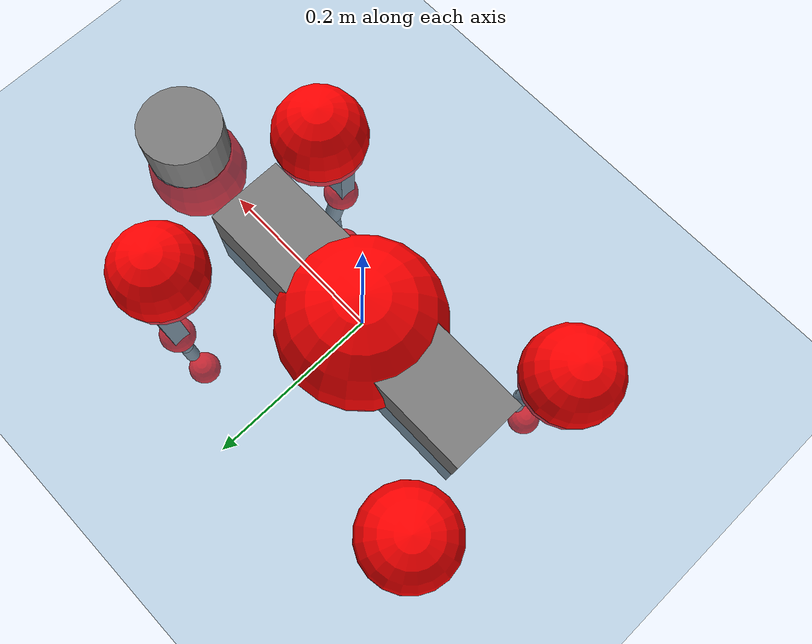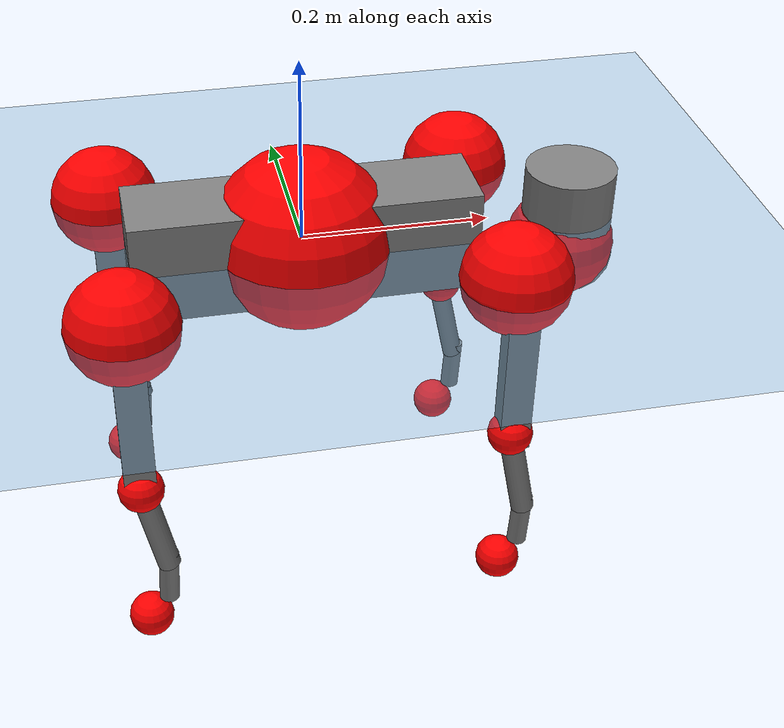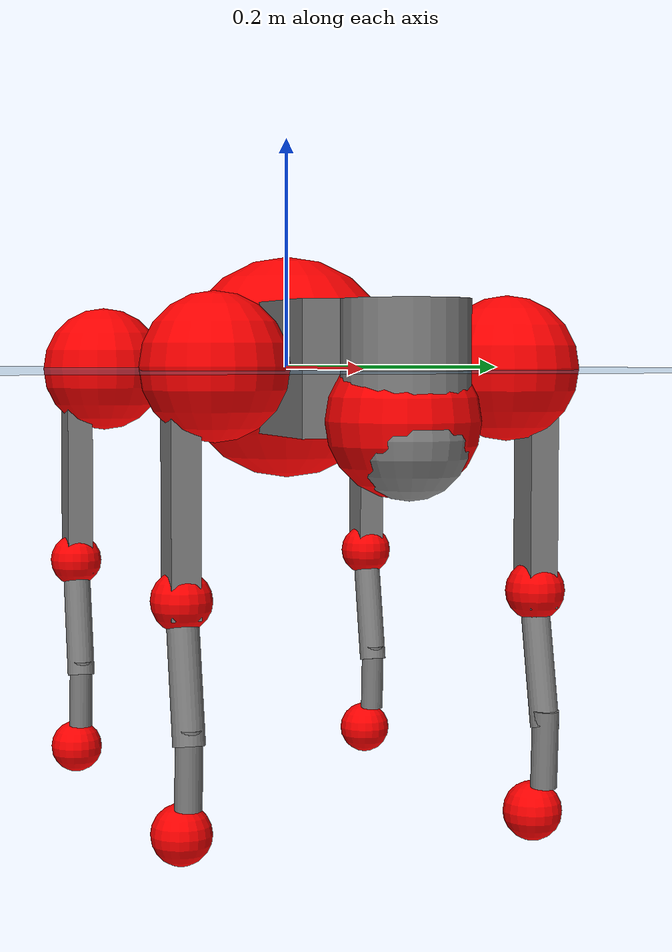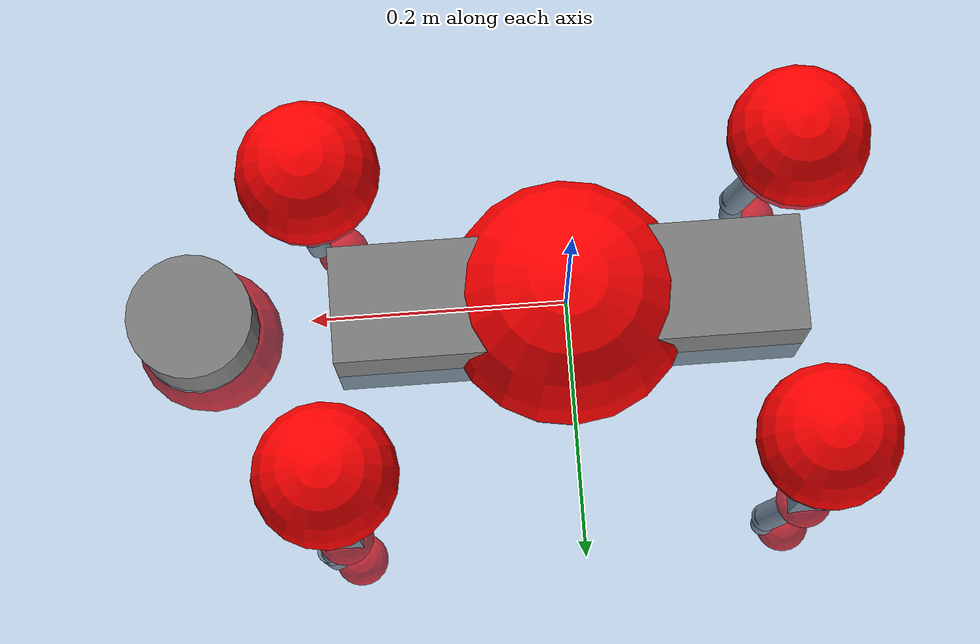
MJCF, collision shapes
<mujoco model="go2">
  <compiler angle="radian" assetdir="assets" balanceinertia="true" inertiafromgeom="false"/>

  <option timestep="0.005" density="1.2" viscosity="2e-05"/>

  <size nkey="1"/>

  <visual>
    <quality shadowsize="8192"/>
    <map shadowclip="0.5"/>
  </visual>

  <default>
    <default class="/">
      <geom contype="0" conaffinity="0" group="1" solref="-1000 -80"/>
      <site size="0.01 0.005 0.005" group="5"/>
      <general forcelimited="true" biastype="affine" gainprm="20" biasprm="0 -20 -0.5"/>
      <default class="go2">
        <joint armature="0.01" damping="0.01" frictionloss="0.2"/>
        <geom condim="1" margin="0.001"/>
        <default class="visual">
          <geom type="mesh" group="2"/>
        </default>
        <default class="collision">
          <geom group="3"/>
          <default class="foot">
            <geom size="0.022 0 0" condim="6" priority="1" friction="0.8 0.02 0.01" solimp="0.015 1 0.022"/>
          </default>
        </default>
        <default class="reward_collision_sphere">
          <geom group="5" rgba="1 0 0 1"/>
        </default>
      </default>
    </default>
  </default>

  <asset>
    <texture type="skybox" colorspace="auto" name="//unnamed_texture_0" builtin="gradient" rgb1="0.95 0.95 0.95" rgb2="0.95 0.95 0.95" width="100" height="600"/>
    <texture type="2d" colorspace="auto" name="texplane" builtin="checker" rgb1="0.345 0.575 0.748" rgb2="0.345 0.575 0.748" markrgb="1 1 1" width="512" height="512"/>
    <material name="MatPlane" class="/" texture="texplane" texuniform="true" texrepeat="2 2" specular="0.9"/>
    <material name="metal" class="/" rgba="0.9 0.95 0.95 1"/>
    <material name="black" class="/" rgba="0 0 0 1"/>
    <material name="white" class="/"/>
    <material name="gray" class="/" rgba="0.671705 0.692426 0.77427 1"/>
    <mesh name="base_0" class="/" file="base_0.obj"/>
    <mesh name="base_1" class="/" file="base_1.obj"/>
    <mesh name="base_2" class="/" file="base_2.obj"/>
    <mesh name="base_3" class="/" file="base_3.obj"/>
    <mesh name="base_4" class="/" file="base_4.obj"/>
    <mesh name="hip_0" class="/" file="hip_0.obj"/>
    <mesh name="hip_1" class="/" file="hip_1.obj"/>
    <mesh name="thigh_0" class="/" file="thigh_0.obj"/>
    <mesh name="thigh_1" class="/" file="thigh_1.obj"/>
    <mesh name="thigh_mirror_0" class="/" file="thigh_mirror_0.obj"/>
    <mesh name="thigh_mirror_1" class="/" file="thigh_mirror_1.obj"/>
    <mesh name="calf_0" class="/" file="calf_0.obj"/>
    <mesh name="calf_1" class="/" file="calf_1.obj"/>
    <mesh name="calf_mirror_0" class="/" file="calf_mirror_0.obj"/>
    <mesh name="calf_mirror_1" class="/" file="calf_mirror_1.obj"/>
    <mesh name="foot" class="/" file="foot.obj"/>
  </asset>

  <worldbody>
    <geom name="floor" class="/" size="100 100 0.125" type="plane" group="0" material="MatPlane"/>
    <light name="toplight_shadow" class="/" pos="0 0 5" dir="0.0990148 0.0990148 -0.990148" type="directional" ambient="0.04 0.04 0.04" diffuse="0.55 0.55 0.55" specular="0.12 0.12 0.12"/>
    <light name="toplight_fill" class="/" pos="0 0 5" dir="0.0990148 0.0990148 -0.990148" type="directional" castshadow="false" ambient="0.04 0.04 0.04" diffuse="0.3 0.3 0.3" specular="0.08 0.08 0.08"/>
    <body name="trunk" childclass="go2" pos="-0.000174241 0.000877669 -2.9414e-05" quat="1 -1.31496e-05 -0.00025242 -0.000207777">
      <inertial pos="0.0207677 0.000189853 -0.00480996" quat="-0.000881784 0.713508 -0.00187568 0.700644" mass="6.25593" diaginertia="0.114612 0.115818 0.0106263"/>
      <joint name="//unnamed_joint_0" type="free" armature="0" damping="0" frictionloss="0"/>
      <geom name="//unnamed_geom_1" class="visual" material="black" mesh="base_0"/>
      <geom name="//unnamed_geom_2" class="visual" material="black" mesh="base_1"/>
      <geom name="//unnamed_geom_3" class="visual" material="black" mesh="base_2"/>
      <geom name="//unnamed_geom_4" class="visual" material="white" mesh="base_3"/>
      <geom name="//unnamed_geom_5" class="visual" material="gray" mesh="base_4"/>
      <geom name="trunk_1" class="collision" size="0.181733 0.0451674 0.0550705" type="box"/>
      <geom name="trunk_2" class="collision" size="0.0483074 0.0434767" pos="0.28943 0 0.00847701" type="cylinder"/>
      <geom name="trunk_3" class="collision" size="0.045409" pos="0.297555 0 -0.050862"/>
      <geom name="//unnamed_geom_9" class="reward_collision_sphere" size="0.0966148"/>
      <geom name="//unnamed_geom_10" class="reward_collision_sphere" size="0.0579689" pos="0.284353 0 -0.0381465"/>
      <site name="imu" pos="-0.0251668 0.000841624 0.0334926" size="0.00966148"/>
      <camera name="track" pos="0 -2.0704 0" quat="0.707107 0.707107 0 0" mode="trackcom"/>
      <camera name="ego_camera" pos="0.31685 0 0.0381465" quat="-0.5 -0.5 0.5 0.5"/>
      <body name="FL_hip" pos="0.196773 0.0495049 0.000205335" quat="1 -4.16785e-05 -0.000140293 -2.2087e-05">
        <inertial pos="-0.00581467 0.00260393 0.000551835" quat="0.497004 0.499297 0.505964 0.497684" mass="0.609224" diaginertia="0.000948908 0.000705546 0.000207344"/>
        <joint name="FL_hip_joint" pos="0 0 0" axis="0.999998 -0.00193995 0.000412339" range="-1.04549 1.05593" armature="0.0092836" damping="0.0086698" frictionloss="0.192093"/>
        <geom name="//unnamed_geom_11" class="visual" material="metal" mesh="hip_0"/>
        <geom name="//unnamed_geom_12" class="visual" material="gray" mesh="hip_1"/>
        <geom name="//unnamed_geom_13" class="collision" size="0.0444428 0.019323" pos="0 0.0828159 0" quat="0.707107 0.707107 0 0" type="cylinder"/>
        <geom name="//unnamed_geom_14" class="reward_collision_sphere" size="0.0579689" pos="0 0.0724639 0"/>
        <body name="FL_thigh" pos="-0.000537659 0.0991642 0.000151657" quat="1 5.47428e-05 -2.41037e-06 9.01781e-05">
          <inertial pos="-0.00388546 -0.0230962 -0.0278592" quat="0.830195 0.084625 -0.0206257 0.550626" mass="1.03091" diaginertia="0.00644054 0.00697506 0.000383742"/>
          <joint name="FL_thigh_joint" pos="0 0 0" axis="0.000753673 1 0.000278356" stiffness="0.00839548" range="-1.55672 3.48001" armature="0.00926557" damping="0.00416354" frictionloss="0.188625"/>
          <geom name="//unnamed_geom_15" class="visual" material="metal" mesh="thigh_0"/>
          <geom name="//unnamed_geom_16" class="visual" material="gray" mesh="thigh_1"/>
          <geom name="//unnamed_geom_17" class="collision" size="0.102895 0.0118353 0.0164245" pos="0 0 -0.0902801" quat="0.707107 0 0.707107 0" type="box"/>
          <body name="FL_calf" pos="-0.000562873 -4.8745e-05 -0.1799" quat="1 -0.000210141 0.000337656 -8.02224e-05">
            <inertial pos="0.00571002 -0.00132445 -0.118538" quat="0.711357 0.000130236 -0.00454015 0.702816" mass="0.218778" diaginertia="0.00160182 0.00172726 2.35022e-05"/>
            <joint name="FL_calf_joint" pos="0 0 0" axis="0.0012062 0.99998 0.00627886" stiffness="0.00136045" range="-2.72015 -0.824108" armature="0.0100215" damping="0.00453653" frictionloss="0.19371"/>
            <geom name="//unnamed_geom_18" class="visual" material="gray" mesh="calf_0"/>
            <geom name="//unnamed_geom_19" class="visual" material="black" mesh="calf_1"/>
            <geom name="FL_calf0" class="collision" size="0.0115938 0.0579689" pos="0.00812436 0 -0.050862" quat="0.994493 0 -0.104807 0" type="cylinder"/>
            <geom name="//unnamed_geom_21" class="collision" size="0.0106276 0.0313998" pos="0.0203109 0 -0.12546" quat="0.999688 0 0.0249974 0" type="cylinder"/>
            <geom name="//unnamed_geom_22" class="visual" pos="0 0 -0.18056" quat="1 0 0 0" material="black" mesh="foot"/>
            <geom name="FL_foot" class="foot" size="0.016615" pos="-0.00203109 0 -0.18056"/>
            <geom name="//unnamed_geom_24" class="reward_collision_sphere" size="0.0241537"/>
            <geom name="//unnamed_geom_25" class="reward_collision_sphere" size="0.0241537" pos="-0.00203109 0 -0.18056"/>
            <site name="FL_foot" class="foot" pos="-0.00203109 0 -0.18056" size="0.00966148"/>
          </body>
        </body>
      </body>
      <body name="FR_hip" pos="0.197006 -0.0476439 0.00189853" quat="1 0.000174335 -3.71743e-05 6.34226e-06">
        <inertial pos="-0.00582234 -0.00144327 -0.000313312" quat="0.498394 0.505449 0.498973 0.497142" mass="0.61157" diaginertia="0.00094364 0.000697015 0.000210014"/>
        <joint name="FR_hip_joint" pos="0 0 0" axis="1 0.000483475 -0.000555732" stiffness="0.00692793" range="-1.06502 1.04909" armature="0.0095107" damping="0.0158629" frictionloss="0.195695"/>
        <geom name="//unnamed_geom_26" class="visual" pos="0 1.63341e-09 7.00601e-08" quat="4.63268e-05 1 0 0" material="metal" mesh="hip_0"/>
        <geom name="//unnamed_geom_27" class="visual" pos="0 2.64795e-09 -1.73286e-07" quat="4.63268e-05 1 0 0" material="gray" mesh="hip_1"/>
        <geom name="//unnamed_geom_28" class="collision" size="0.0444428 0.019323" pos="0 -0.0828159 0" quat="0.707107 0.707107 0 0" type="cylinder"/>
        <geom name="//unnamed_geom_29" class="reward_collision_sphere" size="0.0579689" pos="0 -0.0724639 0"/>
        <body name="FR_thigh" pos="0.000169636 -0.0991657 0.00103443" quat="1 -8.68493e-05 -8.66808e-05 -4.37741e-05">
          <inertial pos="-0.00290015 0.0227565 -0.0279821" quat="0.551571 -0.0199342 0.0845541 0.829592" mass="1.02951" diaginertia="0.00640931 0.00694728 0.00038711"/>
          <joint name="FR_thigh_joint" pos="0 0 0" axis="0.00239059 -0.999997 0.00111318" stiffness="0.00105378" range="-3.50066 1.57055" armature="0.00966234" damping="0.0108107" frictionloss="0.191843"/>
          <geom name="//unnamed_geom_30" class="visual" material="metal" mesh="thigh_mirror_0"/>
          <geom name="//unnamed_geom_31" class="visual" material="gray" mesh="thigh_mirror_1"/>
          <geom name="//unnamed_geom_32" class="collision" size="0.102895 0.0118353 0.0164245" pos="0 0 -0.0902801" quat="0.707107 0 0.707107 0" type="box"/>
          <body name="FR_calf" pos="-0.00155136 0.000542605 -0.179711" quat="1 -3.35816e-05 1.7178e-05 3.62787e-05">
            <inertial pos="0.00579836 0.000633323 -0.120468" quat="0.703619 -0.00452 0.00144333 0.710562" mass="0.217321" diaginertia="0.00158774 0.00174528 2.30713e-05"/>
            <joint name="FR_calf_joint" pos="0 0 0" axis="0.00360842 -0.999992 0.00159173" stiffness="0.00216855" range="0.837704 2.72729" armature="0.00955431" damping="0.00341417" frictionloss="0.198046"/>
            <geom name="//unnamed_geom_33" class="visual" material="gray" mesh="calf_mirror_0"/>
            <geom name="//unnamed_geom_34" class="visual" material="black" mesh="calf_mirror_1"/>
            <geom name="FR_calf0" class="collision" size="0.0125599 0.0579689" pos="0.0101555 0 -0.050862" quat="0.995004 0 -0.0998334 0" type="cylinder"/>
            <geom name="//unnamed_geom_36" class="collision" size="0.0106276 0.0313998" pos="0.0203109 0 -0.12546" quat="0.999688 0 0.0249974 0" type="cylinder"/>
            <geom name="//unnamed_geom_37" class="visual" pos="0 0 -0.18056" quat="1 0 0 0" material="black" mesh="foot"/>
            <geom name="FR_foot" class="foot" size="0.0213041" pos="-0.00203109 0 -0.18056"/>
            <geom name="//unnamed_geom_39" class="reward_collision_sphere" size="0.0241537"/>
            <geom name="//unnamed_geom_40" class="reward_collision_sphere" size="0.0241537" pos="-0.00203109 0 -0.18056"/>
            <site name="FR_foot" class="foot" pos="-0.00203109 0 -0.18056" size="0.00966148"/>
          </body>
        </body>
      </body>
      <body name="RL_hip" pos="-0.196147 0.0477934 -0.00160619" quat="1 -0.000356437 0.00014207 -0.000438459">
        <inertial pos="0.00531598 0.00249426 8.69839e-05" quat="0.505463 0.498239 0.497013 0.499243" mass="0.614117" diaginertia="0.000953254 0.000700191 0.000208554"/>
        <joint name="RL_hip_joint" pos="0 0 0" axis="-0.999806 -0.0168903 -0.0100993" range="-1.05573 1.04503" armature="0.00963738" damping="0.019437" frictionloss="0.194001"/>
        <geom name="//unnamed_geom_41" class="visual" pos="-1.46219e-09 0 -2.86624e-07" quat="4.63268e-05 0 1 0" material="metal" mesh="hip_0"/>
        <geom name="//unnamed_geom_42" class="visual" pos="-2.37039e-09 0 -2.54194e-07" quat="4.63268e-05 0 1 0" material="gray" mesh="hip_1"/>
        <geom name="//unnamed_geom_43" class="collision" size="0.0444428 0.019323" pos="0 0.0828159 0" quat="0.707107 0.707107 0 0" type="cylinder"/>
        <geom name="//unnamed_geom_44" class="reward_collision_sphere" size="0.0579689" pos="0 0.0724639 0"/>
        <body name="RL_thigh" pos="-0.000390598 0.0977226 -0.00130293" quat="1 -4.54243e-06 4.24324e-05 -5.42014e-05">
          <inertial pos="-0.003836 -0.0230264 -0.027913" quat="0.830557 0.0847758 -0.0196539 0.550093" mass="1.04546" diaginertia="0.00646003 0.00700486 0.000385937"/>
          <joint name="RL_thigh_joint" pos="0 0 0" axis="0.000732841 1 0.000283845" range="-0.521354 4.54686" armature="0.010045" damping="0.00339138" frictionloss="0.191133"/>
          <geom name="//unnamed_geom_45" class="visual" material="metal" mesh="thigh_0"/>
          <geom name="//unnamed_geom_46" class="visual" material="gray" mesh="thigh_1"/>
          <geom name="//unnamed_geom_47" class="collision" size="0.102895 0.0118353 0.0164245" pos="0 0 -0.0902801" quat="0.707107 0 0.707107 0" type="box"/>
          <body name="RL_calf" pos="-0.000254065 -0.000204413 -0.18181" quat="1 3.60928e-05 -4.14275e-05 9.88408e-06">
            <inertial pos="0.00640381 -0.00055615 -0.120429" quat="0.711019 0.0013998 -0.00472685 0.703155" mass="0.216875" diaginertia="0.00161069 0.00173942 2.32867e-05"/>
            <joint name="RL_calf_joint" pos="0 0 0" axis="-0.00503207 0.999955 -0.00809046" range="-2.73158 -0.835779" armature="0.00963537" damping="0.00243534" frictionloss="0.191668"/>
            <geom name="//unnamed_geom_48" class="visual" material="gray" mesh="calf_0"/>
            <geom name="//unnamed_geom_49" class="visual" material="black" mesh="calf_1"/>
            <geom name="RL_calf0" class="collision" size="0.0125599 0.0579689" pos="0.0101555 0 -0.050862" quat="0.995004 0 -0.0998334 0" type="cylinder"/>
            <geom name="//unnamed_geom_51" class="collision" size="0.0106276 0.0313998" pos="0.0203109 0 -0.12546" quat="0.999688 0 0.0249974 0" type="cylinder"/>
            <geom name="//unnamed_geom_52" class="visual" pos="0 0 -0.18056" quat="1 0 0 0" material="black" mesh="foot"/>
            <geom name="RL_foot" class="foot" size="0.0188325" pos="-0.00203109 0 -0.18056"/>
            <geom name="//unnamed_geom_54" class="reward_collision_sphere" size="0.0241537"/>
            <geom name="//unnamed_geom_55" class="reward_collision_sphere" size="0.0241537" pos="-0.00203109 0 -0.18056"/>
            <site name="RL_foot" class="foot" pos="-0.00203109 0 -0.18056" size="0.00966148"/>
          </body>
        </body>
      </body>
      <body name="RR_hip" pos="-0.196251 -0.0499577 -0.00246271" quat="1 -0.00010302 0.000148915 0.000498675">
        <inertial pos="0.00526202 -0.00265898 0.000176437" quat="0.499018 0.496712 0.497948 0.506267" mass="0.610376" diaginertia="0.000943388 0.000699155 0.000209597"/>
        <joint name="RR_hip_joint" pos="0 0 0" axis="-1 1.29006e-05 3.07642e-05" range="-1.04344 1.04914" armature="0.00970175" damping="0.0115887" frictionloss="0.197004"/>
        <geom name="//unnamed_geom_56" class="visual" pos="1.46287e-09 1.63341e-09 -3.56684e-07" quat="2.14617e-09 4.63268e-05 4.63268e-05 -1" material="metal" mesh="hip_0"/>
        <geom name="//unnamed_geom_57" class="visual" pos="2.36871e-09 2.64795e-09 -8.09088e-08" quat="2.14617e-09 4.63268e-05 4.63268e-05 -1" material="gray" mesh="hip_1"/>
        <geom name="//unnamed_geom_58" class="collision" size="0.0444428 0.019323" pos="0 -0.0828159 0" quat="0.707107 0.707107 0 0" type="cylinder"/>
        <geom name="//unnamed_geom_59" class="reward_collision_sphere" size="0.0579689" pos="0 -0.0724639 0"/>
        <body name="RR_thigh" pos="0.000817139 -0.0993522 -0.00147982" quat="1 -6.2859e-06 5.6687e-05 -1.74803e-06">
          <inertial pos="-0.0036864 0.0234895 -0.0277627" quat="0.55117 -0.0205522 0.0849622 0.829802" mass="1.04279" diaginertia="0.00642487 0.00694458 0.000384999"/>
          <joint name="RR_thigh_joint" pos="0 0 0" axis="-0.00848358 -0.999964 0.000912135" stiffness="0.00267172" range="-4.53586 0.507228" armature="0.00934764" damping="0.0130773" frictionloss="0.188587"/>
          <geom name="//unnamed_geom_60" class="visual" material="metal" mesh="thigh_mirror_0"/>
          <geom name="//unnamed_geom_61" class="visual" material="gray" mesh="thigh_mirror_1"/>
          <geom name="//unnamed_geom_62" class="collision" size="0.102895 0.0118353 0.0164245" pos="0 0 -0.0902801" quat="0.707107 0 0.707107 0" type="box"/>
          <body name="RR_calf" pos="0.000324954 -0.0014631 -0.181357" quat="1 -9.11515e-05 -4.38526e-05 7.70128e-05">
            <inertial pos="0.00683092 0.000862306 -0.12066" quat="0.703594 -0.00441338 0.00150136 0.710587" mass="0.218184" diaginertia="0.00158979 0.00175175 2.29165e-05"/>
            <joint name="RR_calf_joint" pos="0 0 0" axis="0.00132452 -0.999999 0.00050987" range="0.81957 2.74161" armature="0.0100657" damping="0.00810946" frictionloss="0.197824"/>
            <geom name="//unnamed_geom_63" class="visual" material="gray" mesh="calf_mirror_0"/>
            <geom name="//unnamed_geom_64" class="visual" material="black" mesh="calf_mirror_1"/>
            <geom name="RR_calf0" class="collision" size="0.0125599 0.0579689" pos="0.0101555 0 -0.050862" quat="0.995004 0 -0.0998334 0" type="cylinder"/>
            <geom name="//unnamed_geom_66" class="collision" size="0.0106276 0.0313998" pos="0.0203109 0 -0.12546" quat="0.999688 0 0.0249974 0" type="cylinder"/>
            <geom name="//unnamed_geom_67" class="visual" pos="0 0 -0.18056" quat="1 0 0 0" material="black" mesh="foot"/>
            <geom name="RR_foot" class="foot" size="0.0232382" pos="-0.00203109 0 -0.18056"/>
            <geom name="//unnamed_geom_69" class="reward_collision_sphere" size="0.0241537"/>
            <geom name="//unnamed_geom_70" class="reward_collision_sphere" size="0.0241537" pos="-0.00203109 0 -0.18056"/>
            <site name="RR_foot" class="foot" pos="-0.00203109 0 -0.18056" size="0.00966148"/>
          </body>
        </body>
      </body>
    </body>
  </worldbody>

  <contact>
    <pair class="/" geom1="floor" geom2="FL_foot" name="//unnamed_contact_0"/>
    <pair class="/" geom1="floor" geom2="FR_foot" name="//unnamed_contact_1"/>
    <pair class="/" geom1="floor" geom2="RL_foot" name="//unnamed_contact_2"/>
    <pair class="/" geom1="floor" geom2="RR_foot" name="//unnamed_contact_3"/>
  </contact>

  <actuator>
    <general name="FL_hip" class="/" joint="FL_hip_joint" forcerange="-23.0936 23.0936" gainprm="19.3993" biasprm="0 -19.3993 -0.484713"/>
    <general name="FL_thigh" class="/" joint="FL_thigh_joint" forcerange="-23.449 23.449" gainprm="19.3993" biasprm="0 -19.3993 -0.484713"/>
    <general name="FL_calf" class="/" joint="FL_calf_joint" forcerange="-43.7088 43.7088" gainprm="19.3993" biasprm="0 -19.3993 -0.484713"/>
    <general name="FR_hip" class="/" joint="FR_hip_joint" forcerange="-23.3256 23.3256" gainprm="19.3993" biasprm="0 -19.3993 -0.484713"/>
    <general name="FR_thigh" class="/" joint="FR_thigh_joint" forcerange="-22.7569 22.7569" gainprm="19.3993" biasprm="0 -19.3993 -0.484713"/>
    <general name="FR_calf" class="/" joint="FR_calf_joint" forcerange="-44.9957 44.9957" gainprm="19.3993" biasprm="0 -19.3993 -0.484713"/>
    <general name="RL_hip" class="/" joint="RL_hip_joint" forcerange="-23.0794 23.0794" gainprm="19.3993" biasprm="0 -19.3993 -0.484713"/>
    <general name="RL_thigh" class="/" joint="RL_thigh_joint" forcerange="-23.1645 23.1645" gainprm="19.3993" biasprm="0 -19.3993 -0.484713"/>
    <general name="RL_calf" class="/" joint="RL_calf_joint" forcerange="-43.5671 43.5671" gainprm="19.3993" biasprm="0 -19.3993 -0.484713"/>
    <general name="RR_hip" class="/" joint="RR_hip_joint" forcerange="-22.8538 22.8538" gainprm="19.3993" biasprm="0 -19.3993 -0.484713"/>
    <general name="RR_thigh" class="/" joint="RR_thigh_joint" forcerange="-22.538 22.538" gainprm="19.3993" biasprm="0 -19.3993 -0.484713"/>
    <general name="RR_calf" class="/" joint="RR_calf_joint" forcerange="-43.9794 43.9794" gainprm="19.3993" biasprm="0 -19.3993 -0.484713"/>
  </actuator>

  <sensor>
    <gyro site="imu" name="imu_angular_velocity"/>
    <velocimeter site="imu" name="imu_linear_velocity"/>
    <framelinvel objtype="site" objname="FL_foot" name="FL_foot_global_linear_velocity"/>
    <framelinvel objtype="site" objname="FR_foot" name="FR_foot_global_linear_velocity"/>
    <framelinvel objtype="site" objname="RL_foot" name="RL_foot_global_linear_velocity"/>
    <framelinvel objtype="site" objname="RR_foot" name="RR_foot_global_linear_velocity"/>
  </sensor>

  <keyframe>
    <key name="home" qpos="0 0 0.325 1 0 0 0 0.1 0.8 -1.5 -0.1 -0.8 1.5 -0.1 0.8 -1.5 0.1 -0.8 1.5"/>
  </keyframe>
</mujoco>
